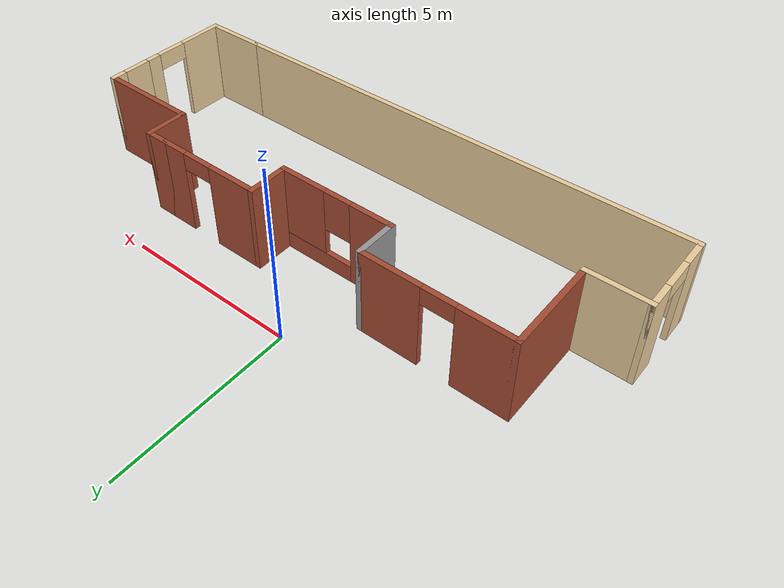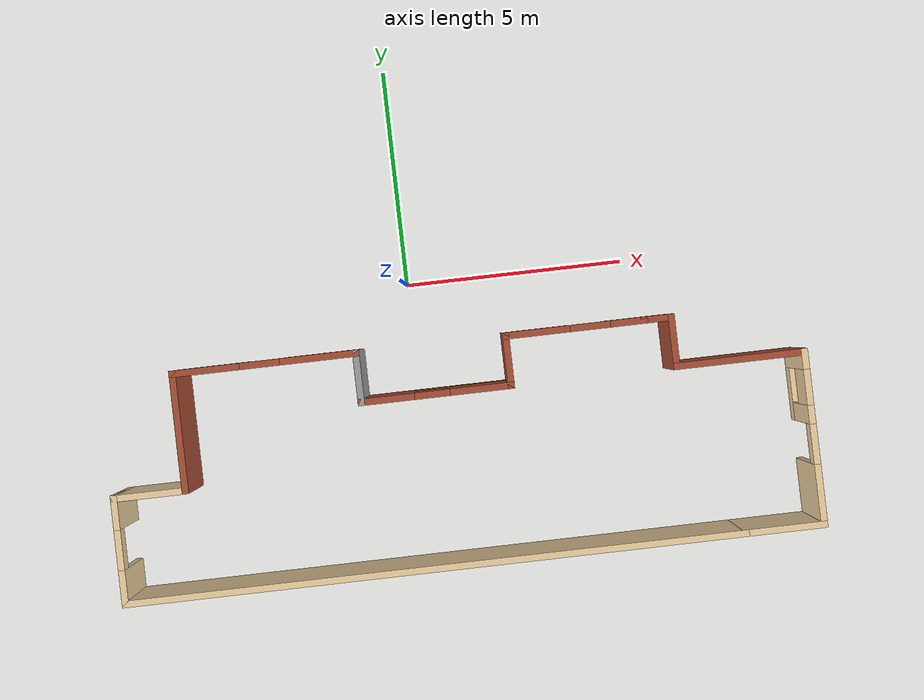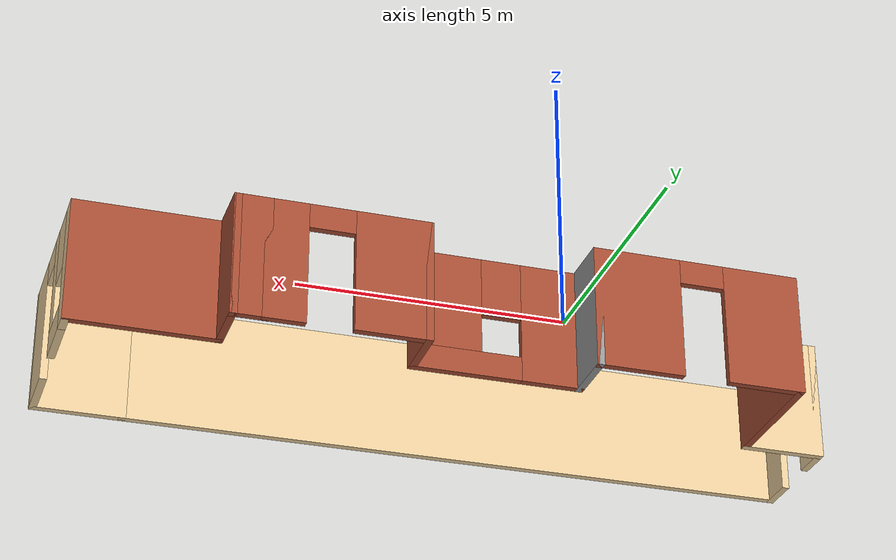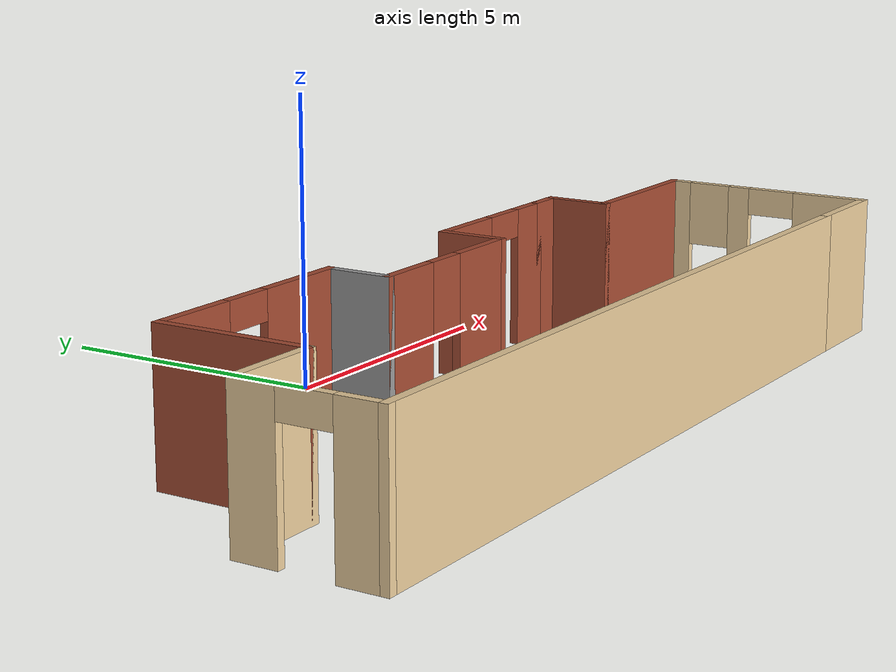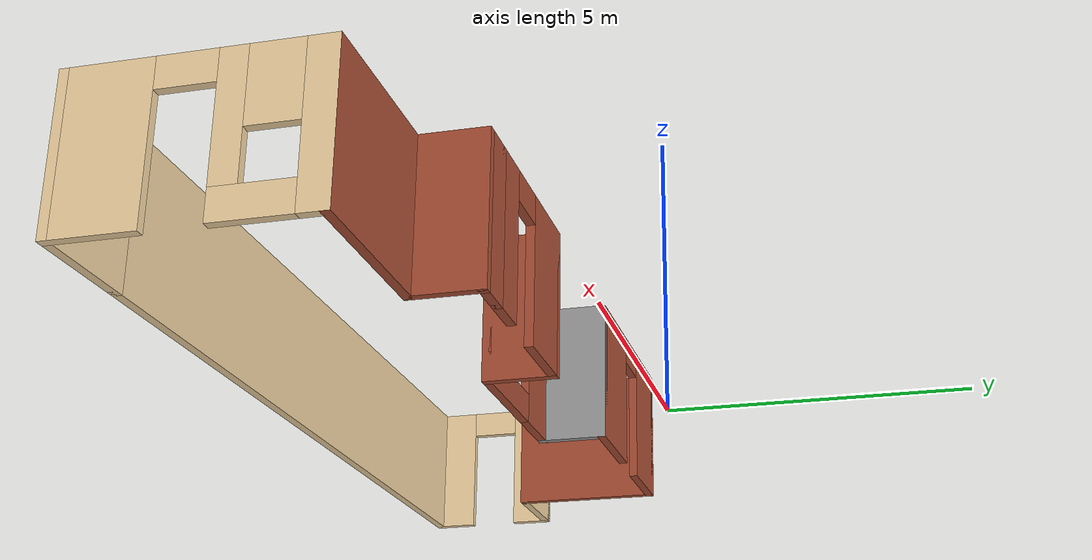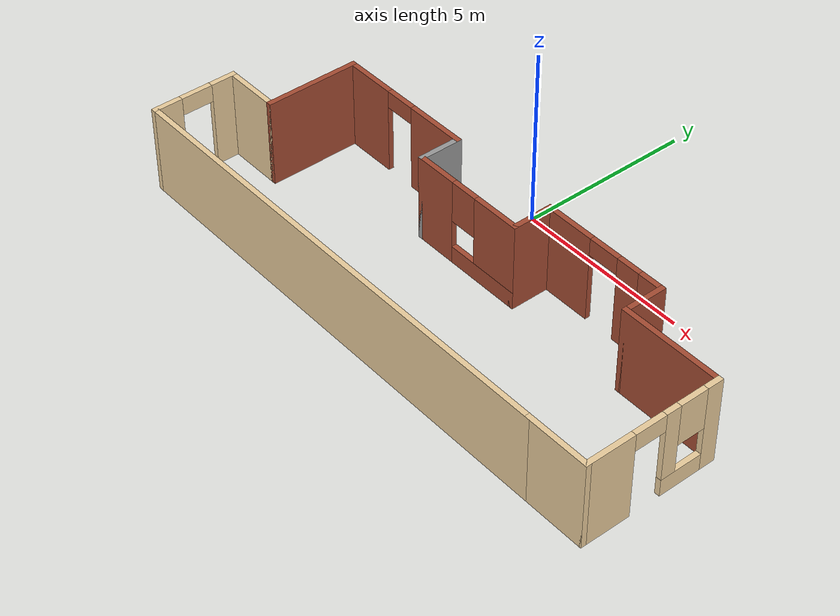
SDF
<?xml version='1.0'?>
<sdf version='1.6'>
  <model name='model'>
    <pose frame=''>0.85 -3.905 0 0 -0 0</pose>
    <link name='Wall_1'>
      <collision name='Wall_1_Collision'>
        <geometry>
          <box>
            <size>14 0.15 2.5</size>
          </box>
        </geometry>
        <pose frame=''>0 0 1.25 0 -0 0</pose>
      </collision>
      <visual name='Wall_1_Visual'>
        <pose frame=''>0 0 1.25 0 -0 0</pose>
        <geometry>
          <box>
            <size>14 0.15 2.5</size>
          </box>
        </geometry>
        <material>
          <script>
            <uri>file://media/materials/scripts/gazebo.material</uri>
            <name>Gazebo/Grey</name>
          </script>
          <ambient>0.921569 0.807843 0.615686 1</ambient>
        </material>
        <meta>
          <layer>0</layer>
        </meta>
      </visual>
      <pose frame=''>-0.875 -2.475 0 0 -0 3.14159</pose>
    </link>
    <link name='Wall_10'>
      <collision name='Wall_10_Collision'>
        <geometry>
          <box>
            <size>0.75 0.15 2.5</size>
          </box>
        </geometry>
        <pose frame=''>0 0 1.25 0 -0 0</pose>
      </collision>
      <visual name='Wall_10_Visual'>
        <pose frame=''>0 0 1.25 0 -0 0</pose>
        <geometry>
          <box>
            <size>0.75 0.15 2.5</size>
          </box>
        </geometry>
        <material>
          <script>
            <uri>file://media/materials/scripts/gazebo.material</uri>
            <name>Gazebo/Bricks</name>
          </script>
          <ambient>1 1 1 1</ambient>
        </material>
        <meta>
          <layer>0</layer>
        </meta>
      </visual>
      <pose frame=''>4.65 2.475 0 0 -0 0</pose>
    </link>
    <link name='Wall_11'>
      <collision name='Wall_11_Collision'>
        <geometry>
          <box>
            <size>1.25 0.15 2.5</size>
          </box>
        </geometry>
        <pose frame=''>0 0 1.25 0 -0 0</pose>
      </collision>
      <visual name='Wall_11_Visual'>
        <pose frame=''>0 0 1.25 0 -0 0</pose>
        <geometry>
          <box>
            <size>1.25 0.15 2.5</size>
          </box>
        </geometry>
        <material>
          <script>
            <uri>file://media/materials/scripts/gazebo.material</uri>
            <name>Gazebo/Bricks</name>
          </script>
          <ambient>1 1 1 1</ambient>
        </material>
        <meta>
          <layer>0</layer>
        </meta>
      </visual>
      <pose frame=''>4.95 1.925 0 0 0 -1.5708</pose>
    </link>
    <link name='Wall_12'>
      <collision name='Wall_12_Collision'>
        <geometry>
          <box>
            <size>3 0.15 2.5</size>
          </box>
        </geometry>
        <pose frame=''>0 0 1.25 0 -0 0</pose>
      </collision>
      <visual name='Wall_12_Visual'>
        <pose frame=''>0 0 1.25 0 -0 0</pose>
        <geometry>
          <box>
            <size>3 0.15 2.5</size>
          </box>
        </geometry>
        <material>
          <script>
            <uri>file://media/materials/scripts/gazebo.material</uri>
            <name>Gazebo/Bricks</name>
          </script>
          <ambient>1 1 1 1</ambient>
        </material>
        <meta>
          <layer>0</layer>
        </meta>
      </visual>
      <pose frame=''>6.375 1.375 0 0 -0 0</pose>
    </link>
    <link name='Wall_13'>
      <pose frame=''>7.8 -0.55 0 0 0 -1.5708</pose>
      <visual name='Wall_13_Visual_0'>
        <pose frame=''>-1.7675 0 1.25 0 -0 0</pose>
        <geometry>
          <box>
            <size>0.465 0.15 2.5</size>
          </box>
        </geometry>
        <material>
          <script>
            <uri>file://media/materials/scripts/gazebo.material</uri>
            <name>Gazebo/Grey</name>
          </script>
          <ambient>0.921569 0.807843 0.615686 1</ambient>
        </material>
        <meta>
          <layer>0</layer>
        </meta>
      </visual>
      <collision name='Wall_13_Collision_0'>
        <geometry>
          <box>
            <size>0.465 0.15 2.5</size>
          </box>
        </geometry>
        <pose frame=''>-1.7675 0 1.25 0 -0 0</pose>
      </collision>
      <visual name='Wall_13_Visual_1'>
        <pose frame=''>1.2925 0 1.25 0 -0 0</pose>
        <geometry>
          <box>
            <size>1.415 0.15 2.5</size>
          </box>
        </geometry>
        <material>
          <script>
            <uri>file://media/materials/scripts/gazebo.material</uri>
            <name>Gazebo/Grey</name>
          </script>
          <ambient>0.921569 0.807843 0.615686 1</ambient>
        </material>
        <meta>
          <layer>0</layer>
        </meta>
      </visual>
      <collision name='Wall_13_Collision_1'>
        <geometry>
          <box>
            <size>1.415 0.15 2.5</size>
          </box>
        </geometry>
        <pose frame=''>1.2925 0 1.25 0 -0 0</pose>
      </collision>
      <visual name='Wall_13_Visual_2'>
        <pose frame=''>-0.925 0 0.25 0 -0 0</pose>
        <geometry>
          <box>
            <size>1.22 0.15 0.5</size>
          </box>
        </geometry>
        <material>
          <script>
            <uri>file://media/materials/scripts/gazebo.material</uri>
            <name>Gazebo/Grey</name>
          </script>
          <ambient>0.921569 0.807843 0.615686 1</ambient>
        </material>
        <meta>
          <layer>0</layer>
        </meta>
      </visual>
      <collision name='Wall_13_Collision_2'>
        <geometry>
          <box>
            <size>1.22 0.15 0.5</size>
          </box>
        </geometry>
        <pose frame=''>-0.925 0 0.25 0 -0 0</pose>
      </collision>
      <visual name='Wall_13_Visual_3'>
        <pose frame=''>-0.525 0 1.5 0 -0 0</pose>
        <geometry>
          <box>
            <size>0.42 0.15 2</size>
          </box>
        </geometry>
        <material>
          <script>
            <uri>file://media/materials/scripts/gazebo.material</uri>
            <name>Gazebo/Grey</name>
          </script>
          <ambient>0.921569 0.807843 0.615686 1</ambient>
        </material>
        <meta>
          <layer>0</layer>
        </meta>
      </visual>
      <collision name='Wall_13_Collision_3'>
        <geometry>
          <box>
            <size>0.42 0.15 2</size>
          </box>
        </geometry>
        <pose frame=''>-0.525 0 1.5 0 -0 0</pose>
      </collision>
      <visual name='Wall_13_Visual_4'>
        <pose frame=''>-1.135 0 1.9 0 -0 0</pose>
        <geometry>
          <box>
            <size>0.8 0.15 1.2</size>
          </box>
        </geometry>
        <material>
          <script>
            <uri>file://media/materials/scripts/gazebo.material</uri>
            <name>Gazebo/Grey</name>
          </script>
          <ambient>0.921569 0.807843 0.615686 1</ambient>
        </material>
        <meta>
          <layer>0</layer>
        </meta>
      </visual>
      <collision name='Wall_13_Collision_4'>
        <geometry>
          <box>
            <size>0.8 0.15 1.2</size>
          </box>
        </geometry>
        <pose frame=''>-1.135 0 1.9 0 -0 0</pose>
      </collision>
      <visual name='Wall_13_Visual_5'>
        <pose frame=''>0.135 0 2.25 0 -0 0</pose>
        <geometry>
          <box>
            <size>0.9 0.15 0.5</size>
          </box>
        </geometry>
        <material>
          <script>
            <uri>file://media/materials/scripts/gazebo.material</uri>
            <name>Gazebo/Grey</name>
          </script>
          <ambient>0.921569 0.807843 0.615686 1</ambient>
        </material>
        <meta>
          <layer>0</layer>
        </meta>
      </visual>
      <collision name='Wall_13_Collision_5'>
        <geometry>
          <box>
            <size>0.9 0.15 0.5</size>
          </box>
        </geometry>
        <pose frame=''>0.135 0 2.25 0 -0 0</pose>
      </collision>
    </link>
    <link name='Wall_14'>
      <collision name='Wall_14_Collision'>
        <geometry>
          <box>
            <size>1.9 0.15 2.5</size>
          </box>
        </geometry>
        <pose frame=''>0 0 1.25 0 -0 0</pose>
      </collision>
      <visual name='Wall_14_Visual'>
        <pose frame=''>0 0 1.25 0 -0 0</pose>
        <geometry>
          <box>
            <size>1.9 0.15 2.5</size>
          </box>
        </geometry>
        <material>
          <script>
            <uri>file://media/materials/scripts/gazebo.material</uri>
            <name>Gazebo/Grey</name>
          </script>
          <ambient>0.921569 0.807843 0.615686 1</ambient>
        </material>
        <meta>
          <layer>0</layer>
        </meta>
      </visual>
      <pose frame=''>6.925 -2.475 0 0 -0 3.14159</pose>
    </link>
    <link name='Wall_2'>
      <pose frame=''>-7.8 -1.3 0 0 -0 1.5708</pose>
      <visual name='Wall_2_Visual_0'>
        <pose frame=''>-0.8375 0 1.25 0 -0 0</pose>
        <geometry>
          <box>
            <size>0.825 0.15 2.5</size>
          </box>
        </geometry>
        <material>
          <script>
            <uri>file://media/materials/scripts/gazebo.material</uri>
            <name>Gazebo/Grey</name>
          </script>
          <ambient>0.921569 0.807843 0.615686 1</ambient>
        </material>
        <meta>
          <layer>0</layer>
        </meta>
      </visual>
      <collision name='Wall_2_Collision_0'>
        <geometry>
          <box>
            <size>0.825 0.15 2.5</size>
          </box>
        </geometry>
        <pose frame=''>-0.8375 0 1.25 0 -0 0</pose>
      </collision>
      <visual name='Wall_2_Visual_1'>
        <pose frame=''>0.8625 0 1.25 0 -0 0</pose>
        <geometry>
          <box>
            <size>0.775 0.15 2.5</size>
          </box>
        </geometry>
        <material>
          <script>
            <uri>file://media/materials/scripts/gazebo.material</uri>
            <name>Gazebo/Grey</name>
          </script>
          <ambient>0.921569 0.807843 0.615686 1</ambient>
        </material>
        <meta>
          <layer>0</layer>
        </meta>
      </visual>
      <collision name='Wall_2_Collision_1'>
        <geometry>
          <box>
            <size>0.775 0.15 2.5</size>
          </box>
        </geometry>
        <pose frame=''>0.8625 0 1.25 0 -0 0</pose>
      </collision>
      <visual name='Wall_2_Visual_2'>
        <pose frame=''>0.025 0 2.25 0 -0 0</pose>
        <geometry>
          <box>
            <size>0.9 0.15 0.5</size>
          </box>
        </geometry>
        <material>
          <script>
            <uri>file://media/materials/scripts/gazebo.material</uri>
            <name>Gazebo/Grey</name>
          </script>
          <ambient>0.921569 0.807843 0.615686 1</ambient>
        </material>
        <meta>
          <layer>0</layer>
        </meta>
      </visual>
      <collision name='Wall_2_Collision_2'>
        <geometry>
          <box>
            <size>0.9 0.15 0.5</size>
          </box>
        </geometry>
        <pose frame=''>0.025 0 2.25 0 -0 0</pose>
      </collision>
    </link>
    <link name='Wall_3'>
      <collision name='Wall_3_Collision'>
        <geometry>
          <box>
            <size>1.75 0.15 2.5</size>
          </box>
        </geometry>
        <pose frame=''>0 0 1.25 0 -0 0</pose>
      </collision>
      <visual name='Wall_3_Visual'>
        <pose frame=''>0 0 1.25 0 -0 0</pose>
        <geometry>
          <box>
            <size>1.75 0.15 2.5</size>
          </box>
        </geometry>
        <material>
          <script>
            <uri>file://media/materials/scripts/gazebo.material</uri>
            <name>Gazebo/Grey</name>
          </script>
          <ambient>0.921569 0.807843 0.615686 1</ambient>
        </material>
        <meta>
          <layer>0</layer>
        </meta>
      </visual>
      <pose frame=''>-7 -0.125 0 0 -0 0</pose>
    </link>
    <link name='Wall_4'>
      <collision name='Wall_4_Collision'>
        <geometry>
          <box>
            <size>2.75 0.15 2.5</size>
          </box>
        </geometry>
        <pose frame=''>0 0 1.25 0 -0 0</pose>
      </collision>
      <visual name='Wall_4_Visual'>
        <pose frame=''>0 0 1.25 0 -0 0</pose>
        <geometry>
          <box>
            <size>2.75 0.15 2.5</size>
          </box>
        </geometry>
        <material>
          <script>
            <uri>file://media/materials/scripts/gazebo.material</uri>
            <name>Gazebo/Bricks</name>
          </script>
          <ambient>1 1 1 1</ambient>
        </material>
        <meta>
          <layer>0</layer>
        </meta>
      </visual>
      <pose frame=''>-6.2 1.175 0 0 -0 1.5708</pose>
    </link>
    <link name='Wall_5'>
      <pose frame=''>-4.15 2.475 0 0 -0 0</pose>
      <visual name='Wall_5_Visual_0'>
        <pose frame=''>-1.3375 0 1.25 0 -0 0</pose>
        <geometry>
          <box>
            <size>1.575 0.15 2.5</size>
          </box>
        </geometry>
        <material>
          <script>
            <uri>file://media/materials/scripts/gazebo.material</uri>
            <name>Gazebo/Bricks</name>
          </script>
          <ambient>1 1 1 1</ambient>
        </material>
        <meta>
          <layer>0</layer>
        </meta>
      </visual>
      <collision name='Wall_5_Collision_0'>
        <geometry>
          <box>
            <size>1.575 0.15 2.5</size>
          </box>
        </geometry>
        <pose frame=''>-1.3375 0 1.25 0 -0 0</pose>
      </collision>
      <visual name='Wall_5_Visual_1'>
        <pose frame=''>1.2375 0 1.25 0 -0 0</pose>
        <geometry>
          <box>
            <size>1.775 0.15 2.5</size>
          </box>
        </geometry>
        <material>
          <script>
            <uri>file://media/materials/scripts/gazebo.material</uri>
            <name>Gazebo/Bricks</name>
          </script>
          <ambient>1 1 1 1</ambient>
        </material>
        <meta>
          <layer>0</layer>
        </meta>
      </visual>
      <collision name='Wall_5_Collision_1'>
        <geometry>
          <box>
            <size>1.775 0.15 2.5</size>
          </box>
        </geometry>
        <pose frame=''>1.2375 0 1.25 0 -0 0</pose>
      </collision>
      <visual name='Wall_5_Visual_2'>
        <pose frame=''>-0.1 0 2.25 0 -0 0</pose>
        <geometry>
          <box>
            <size>0.9 0.15 0.5</size>
          </box>
        </geometry>
        <material>
          <script>
            <uri>file://media/materials/scripts/gazebo.material</uri>
            <name>Gazebo/Bricks</name>
          </script>
          <ambient>1 1 1 1</ambient>
        </material>
        <meta>
          <layer>0</layer>
        </meta>
      </visual>
      <collision name='Wall_5_Collision_2'>
        <geometry>
          <box>
            <size>0.9 0.15 0.5</size>
          </box>
        </geometry>
        <pose frame=''>-0.1 0 2.25 0 -0 0</pose>
      </collision>
    </link>
    <link name='Wall_6'>
      <collision name='Wall_6_Collision'>
        <geometry>
          <box>
            <size>1.25 0.15 2.5</size>
          </box>
        </geometry>
        <pose frame=''>0 0 1.25 0 -0 0</pose>
      </collision>
      <visual name='Wall_6_Visual'>
        <pose frame=''>0 0 1.25 0 -0 0</pose>
        <geometry>
          <box>
            <size>1.25 0.15 2.5</size>
          </box>
        </geometry>
        <material>
          <script>
            <uri>file://media/materials/scripts/gazebo.material</uri>
            <name>Gazebo/Grey</name>
          </script>
          <ambient>1 1 1 1</ambient>
        </material>
        <meta>
          <layer>0</layer>
        </meta>
      </visual>
      <pose frame=''>-2.1 1.925 0 0 0 -1.5708</pose>
    </link>
    <link name='Wall_7'>
      <pose frame=''>-0.425 1.375 0 0 -0 0</pose>
      <visual name='Wall_7_Visual_0'>
        <pose frame=''>-1.1175 0 1.25 0 -0 0</pose>
        <geometry>
          <box>
            <size>1.265 0.15 2.5</size>
          </box>
        </geometry>
        <material>
          <script>
            <uri>file://media/materials/scripts/gazebo.material</uri>
            <name>Gazebo/Bricks</name>
          </script>
          <ambient>1 1 1 1</ambient>
        </material>
        <meta>
          <layer>0</layer>
        </meta>
      </visual>
      <collision name='Wall_7_Collision_0'>
        <geometry>
          <box>
            <size>1.265 0.15 2.5</size>
          </box>
        </geometry>
        <pose frame=''>-1.1175 0 1.25 0 -0 0</pose>
      </collision>
      <visual name='Wall_7_Visual_1'>
        <pose frame=''>0.6325 0 0.25 0 -0 0</pose>
        <geometry>
          <box>
            <size>2.235 0.15 0.5</size>
          </box>
        </geometry>
        <material>
          <script>
            <uri>file://media/materials/scripts/gazebo.material</uri>
            <name>Gazebo/Bricks</name>
          </script>
          <ambient>1 1 1 1</ambient>
        </material>
        <meta>
          <layer>0</layer>
        </meta>
      </visual>
      <collision name='Wall_7_Collision_1'>
        <geometry>
          <box>
            <size>2.235 0.15 0.5</size>
          </box>
        </geometry>
        <pose frame=''>0.6325 0 0.25 0 -0 0</pose>
      </collision>
      <visual name='Wall_7_Visual_2'>
        <pose frame=''>1.0325 0 1.5 0 -0 0</pose>
        <geometry>
          <box>
            <size>1.435 0.15 2</size>
          </box>
        </geometry>
        <material>
          <script>
            <uri>file://media/materials/scripts/gazebo.material</uri>
            <name>Gazebo/Bricks</name>
          </script>
          <ambient>1 1 1 1</ambient>
        </material>
        <meta>
          <layer>0</layer>
        </meta>
      </visual>
      <collision name='Wall_7_Collision_2'>
        <geometry>
          <box>
            <size>1.435 0.15 2</size>
          </box>
        </geometry>
        <pose frame=''>1.0325 0 1.5 0 -0 0</pose>
      </collision>
      <visual name='Wall_7_Visual_3'>
        <pose frame=''>-0.085 0 1.9 0 -0 0</pose>
        <geometry>
          <box>
            <size>0.8 0.15 1.2</size>
          </box>
        </geometry>
        <material>
          <script>
            <uri>file://media/materials/scripts/gazebo.material</uri>
            <name>Gazebo/Bricks</name>
          </script>
          <ambient>1 1 1 1</ambient>
        </material>
        <meta>
          <layer>0</layer>
        </meta>
      </visual>
      <collision name='Wall_7_Collision_3'>
        <geometry>
          <box>
            <size>0.8 0.15 1.2</size>
          </box>
        </geometry>
        <pose frame=''>-0.085 0 1.9 0 -0 0</pose>
      </collision>
    </link>
    <link name='Wall_8'>
      <collision name='Wall_8_Collision'>
        <geometry>
          <box>
            <size>1.25 0.15 2.5</size>
          </box>
        </geometry>
        <pose frame=''>0 0 1.25 0 -0 0</pose>
      </collision>
      <visual name='Wall_8_Visual'>
        <pose frame=''>0 0 1.25 0 -0 0</pose>
        <geometry>
          <box>
            <size>1.25 0.15 2.5</size>
          </box>
        </geometry>
        <material>
          <script>
            <uri>file://media/materials/scripts/gazebo.material</uri>
            <name>Gazebo/Bricks</name>
          </script>
          <ambient>1 1 1 1</ambient>
        </material>
        <meta>
          <layer>0</layer>
        </meta>
      </visual>
      <pose frame=''>1.25 1.925 0 0 -0 1.5708</pose>
    </link>
    <link name='Wall_9'>
      <pose frame=''>2.8 2.475 0 0 -0 0</pose>
      <visual name='Wall_9_Visual_0'>
        <pose frame=''>-0.8675 0 1.25 0 -0 0</pose>
        <geometry>
          <box>
            <size>1.515 0.15 2.5</size>
          </box>
        </geometry>
        <material>
          <script>
            <uri>file://media/materials/scripts/gazebo.material</uri>
            <name>Gazebo/Bricks</name>
          </script>
          <ambient>1 1 1 1</ambient>
        </material>
        <meta>
          <layer>0</layer>
        </meta>
      </visual>
      <collision name='Wall_9_Collision_0'>
        <geometry>
          <box>
            <size>1.515 0.15 2.5</size>
          </box>
        </geometry>
        <pose frame=''>-0.8675 0 1.25 0 -0 0</pose>
      </collision>
      <visual name='Wall_9_Visual_1'>
        <pose frame=''>1.2075 0 1.25 0 -0 0</pose>
        <geometry>
          <box>
            <size>0.835 0.15 2.5</size>
          </box>
        </geometry>
        <material>
          <script>
            <uri>file://media/materials/scripts/gazebo.material</uri>
            <name>Gazebo/Bricks</name>
          </script>
          <ambient>1 1 1 1</ambient>
        </material>
        <meta>
          <layer>0</layer>
        </meta>
      </visual>
      <collision name='Wall_9_Collision_1'>
        <geometry>
          <box>
            <size>0.835 0.15 2.5</size>
          </box>
        </geometry>
        <pose frame=''>1.2075 0 1.25 0 -0 0</pose>
      </collision>
      <visual name='Wall_9_Visual_2'>
        <pose frame=''>0.34 0 2.25 0 -0 0</pose>
        <geometry>
          <box>
            <size>0.9 0.15 0.5</size>
          </box>
        </geometry>
        <material>
          <script>
            <uri>file://media/materials/scripts/gazebo.material</uri>
            <name>Gazebo/Bricks</name>
          </script>
          <ambient>1 1 1 1</ambient>
        </material>
        <meta>
          <layer>0</layer>
        </meta>
      </visual>
      <collision name='Wall_9_Collision_2'>
        <geometry>
          <box>
            <size>0.9 0.15 0.5</size>
          </box>
        </geometry>
        <pose frame=''>0.34 0 2.25 0 -0 0</pose>
      </collision>
    </link>
    <static>1</static>
  </model>
</sdf>
